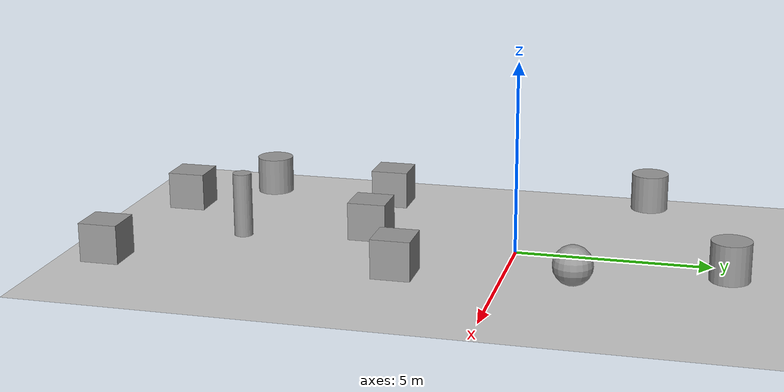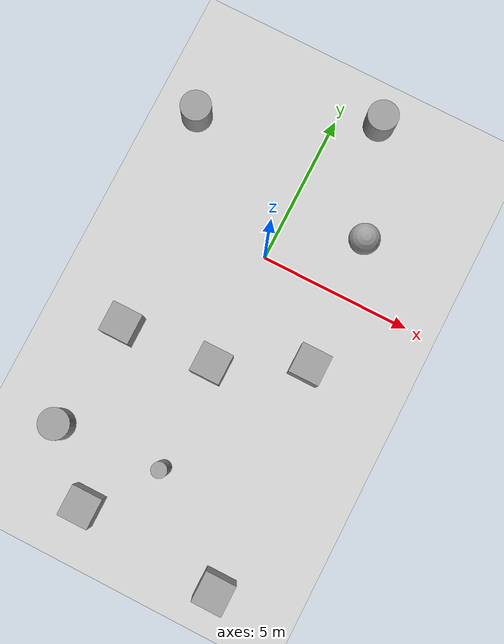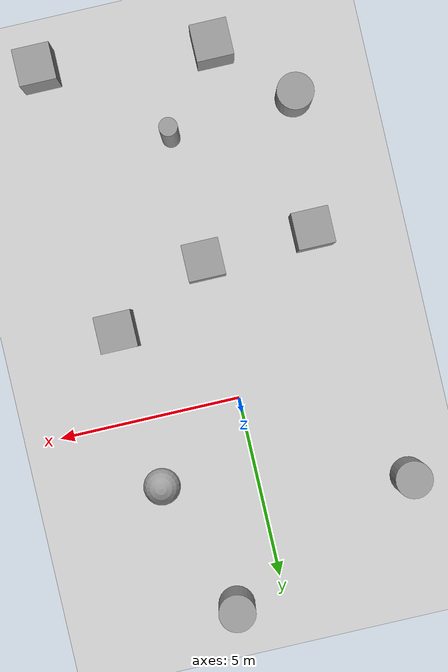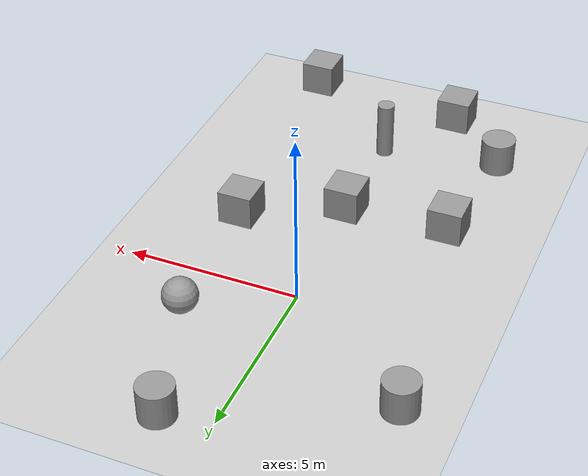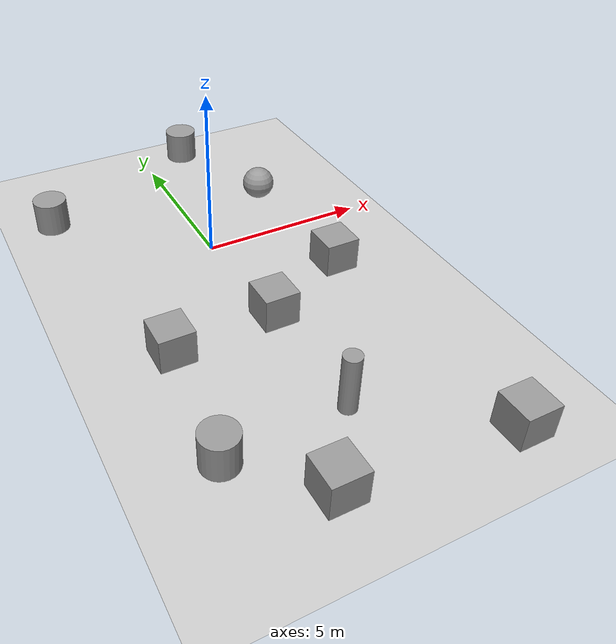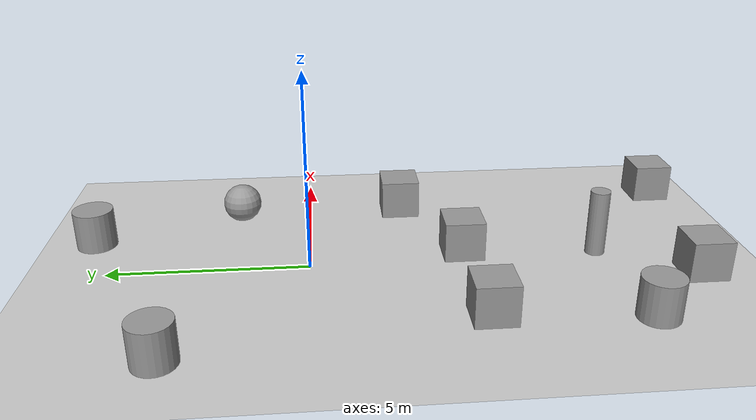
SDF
<sdf version="1.6">
 <world name="default">
  <light name="sun" type="directional">
   <pose>0 0 10 0 -0 0</pose>
   <diffuse>0.8 0.8 0.8 1</diffuse>
   <specular>0.2 0.2 0.2 1</specular>
   <attenuation>
    <range>1000</range>
    <constant>0.9</constant>
    <linear>0.01</linear>
    <quadratic>0.001</quadratic>
   </attenuation>
   <direction>0 0.5 -0.9</direction>
  </light>
  <light name="point_light" type="point">
   <pose>0 -0.377195 6.59868 0 -0 0</pose>
   <diffuse>0.784314 0.784314 0.784314 1</diffuse>
   <specular>0.0980392 0.0980392 0.0980392 1</specular>
   <attenuation>
    <range>50</range>
    <constant>0.8</constant>
    <linear>0</linear>
    <quadratic>0.001</quadratic>
   </attenuation>
   <cast_shadows>0</cast_shadows>
   <direction>0 0 -1</direction>
  </light>
  <model name="ground_plane">
   <static>1</static>
   <link name="link">
    <collision name="collision">
     <geometry><plane><normal>0 0 1</normal><size>100 100</size></plane></geometry>
     <surface><friction><ode><mu>100</mu><mu2>50</mu2></ode></friction></surface>
    </collision>
    <visual name="visual">
     <cast_shadows>0</cast_shadows>
     <geometry><plane><normal>0 0 1</normal><size>100 100</size></plane></geometry>
     <material>
      <script><uri>file://media/materials/scripts/gazebo.material</uri><name>Gazebo/Grey</name></script>
     </material>
    </visual>
   </link>
  </model>
  <gravity>0 0 -9.8</gravity>
  <magnetic_field>6e-06 2.3e-05 -4.2e-05</magnetic_field>
  <atmosphere type="adiabatic"/>
  <physics name="default_physics" default="0" type="ode">
   <max_step_size>0.001</max_step_size>
   <real_time_factor>1</real_time_factor>
   <real_time_update_rate>1000</real_time_update_rate>
  </physics>
  <scene><ambient>0.4 0.4 0.4 1</ambient><background>0.7 0.7 0.7 1</background><shadows>1</shadows></scene>
  <spherical_coordinates>
   <surface_model>EARTH_WGS84</surface_model>
   <latitude_deg>0</latitude_deg>
   <longitude_deg>0</longitude_deg>
   <elevation>0</elevation>
   <heading_deg>0</heading_deg>
  </spherical_coordinates>
  <model name="unit_sphere">
   <pose>2.53091 1.81166 0.6898 0 -0 0</pose>
   <link name="link">
    <inertial>
     <mass>1</mass>
     <inertia><ixx>0.1</ixx><ixy>0</ixy><ixz>0</ixz><iyy>0.1</iyy><iyz>0</iyz><izz>0.1</izz></inertia>
    </inertial>
    <collision name="collision"><geometry><sphere><radius>0.5</radius></sphere></geometry></collision>
    <visual name="visual">
     <geometry><sphere><radius>0.5</radius></sphere></geometry>
     <material>
      <script><name>Gazebo/Grey</name><uri>file://media/materials/scripts/gazebo.material</uri></script>
     </material>
    </visual>
   </link>
  </model>
  <model name="unit_box">
   <pose>2.77273 -2.49368 0.6898 -0 -0 -0</pose>
   <link name="link">
    <inertial>
     <mass>1</mass>
     <inertia>
      <ixx>0.166667</ixx>
      <ixy>0</ixy>
      <ixz>0</ixz>
      <iyy>0.166667</iyy>
      <iyz>0</iyz>
      <izz>0.166667</izz>
     </inertia>
    </inertial>
    <collision name="collision"><geometry><box><size>1 1 1</size></box></geometry></collision>
    <visual name="visual">
     <geometry><box><size>1 1 1</size></box></geometry>
     <material>
      <script><name>Gazebo/Grey</name><uri>file://media/materials/scripts/gazebo.material</uri></script>
     </material>
    </visual>
   </link>
  </model>
  <model name="unit_cylinder">
   <pose>-3.26627 -7.60597 0.68979 0 0 -5.6e-05</pose>
   <link name="link">
    <inertial>
     <mass>1</mass>
     <inertia><ixx>0.145833</ixx><ixy>0</ixy><ixz>0</ixz><iyy>0.145833</iyy><iyz>0</iyz><izz>0.125</izz></inertia>
    </inertial>
    <collision name="collision">
     <geometry><cylinder><radius>0.5</radius><length>1</length></cylinder></geometry>
    </collision>
    <visual name="visual">
     <geometry><cylinder><radius>0.5</radius><length>1</length></cylinder></geometry>
     <material>
      <script><name>Gazebo/Grey</name><uri>file://media/materials/scripts/gazebo.material</uri></script>
     </material>
    </visual>
   </link>
  </model>
  <audio><device>default</device></audio>
  <model name="unit_cylinder_0">
   <pose>-4.0198 3.06499 0.6898 0 0 -1.3e-05</pose>
   <link name="link">
    <inertial>
     <mass>1</mass>
     <inertia><ixx>0.145833</ixx><ixy>0</ixy><ixz>0</ixz><iyy>0.145833</iyy><iyz>0</iyz><izz>0.125</izz></inertia>
    </inertial>
    <collision name="collision">
     <geometry><cylinder><radius>0.5</radius><length>1</length></cylinder></geometry>
    </collision>
    <visual name="visual">
     <geometry><cylinder><radius>0.5</radius><length>1</length></cylinder></geometry>
     <material>
      <script><name>Gazebo/Grey</name><uri>file://media/materials/scripts/gazebo.material</uri></script>
     </material>
    </visual>
   </link>
  </model>
  <model name="unit_cylinder_1">
   <pose>1.30758 5.44611 0.6898 0 -0 1e-05</pose>
   <link name="link">
    <inertial>
     <mass>1</mass>
     <inertia><ixx>0.145833</ixx><ixy>0</ixy><ixz>0</ixz><iyy>0.145833</iyy><iyz>0</iyz><izz>0.125</izz></inertia>
    </inertial>
    <collision name="collision">
     <geometry><cylinder><radius>0.5</radius><length>1</length></cylinder></geometry>
    </collision>
    <visual name="visual">
     <geometry><cylinder><radius>0.5</radius><length>1</length></cylinder></geometry>
     <material>
      <script><name>Gazebo/Grey</name><uri>file://media/materials/scripts/gazebo.material</uri></script>
     </material>
    </visual>
   </link>
  </model>
  <model name="unit_box_1">
   <pose>-2.91798 -3.99395 0.6898 -0 -0 -0</pose>
   <link name="link">
    <inertial>
     <mass>1</mass>
     <inertia>
      <ixx>0.166667</ixx>
      <ixy>0</ixy>
      <ixz>0</ixz>
      <iyy>0.166667</iyy>
      <iyz>0</iyz>
      <izz>0.166667</izz>
     </inertia>
    </inertial>
    <collision name="collision"><geometry><box><size>1 1 1</size></box></geometry></collision>
    <visual name="visual">
     <geometry><box><size>1 1 1</size></box></geometry>
     <material>
      <script><name>Gazebo/Grey</name><uri>file://media/materials/scripts/gazebo.material</uri></script>
     </material>
    </visual>
   </link>
  </model>
  <model name="unit_box_2">
   <pose>-1.4149 -9.41627 0.6898 -0 -0 -0</pose>
   <link name="link">
    <inertial>
     <mass>1</mass>
     <inertia>
      <ixx>0.166667</ixx>
      <ixy>0</ixy>
      <ixz>0</ixz>
      <iyy>0.166667</iyy>
      <iyz>0</iyz>
      <izz>0.166667</izz>
     </inertia>
    </inertial>
    <collision name="collision"><geometry><box><size>1 1 1</size></box></geometry></collision>
    <visual name="visual">
     <geometry><box><size>1 1 1</size></box></geometry>
     <material>
      <script><name>Gazebo/Grey</name><uri>file://media/materials/scripts/gazebo.material</uri></script>
     </material>
    </visual>
   </link>
  </model>
  <model name="unit_box_3">
   <pose>3.27706 -9.83599 0.6898 -0 -0 -0</pose>
   <link name="link">
    <inertial>
     <mass>1</mass>
     <inertia>
      <ixx>0.166667</ixx>
      <ixy>0</ixy>
      <ixz>0</ixz>
      <iyy>0.166667</iyy>
      <iyz>0</iyz>
      <izz>0.166667</izz>
     </inertia>
    </inertial>
    <collision name="collision"><geometry><box><size>1 1 1</size></box></geometry></collision>
    <visual name="visual">
     <geometry><box><size>1 1 1</size></box></geometry>
     <material>
      <script><name>Gazebo/Grey</name><uri>file://media/materials/scripts/gazebo.material</uri></script>
     </material>
    </visual>
   </link>
  </model>
  <model name="unit_cylinder_2">
   <link name="link">
    <inertial>
     <mass>1</mass>
     <inertia><ixx>0.145833</ixx><ixy>0</ixy><ixz>0</ixz><iyy>0.145833</iyy><iyz>0</iyz><izz>0.125</izz></inertia>
    </inertial>
    <visual name="visual">
     <geometry><cylinder><radius>0.25</radius><length>2</length></cylinder></geometry>
     <material>
      <script><name>Gazebo/Grey</name><uri>file://media/materials/scripts/gazebo.material</uri></script>
      <shader type="normal_map_object_space"><normal_map>__default__</normal_map></shader>
      <ambient>0.3 0.3 0.3 1</ambient>
      <diffuse>0.7 0.7 0.7 1</diffuse>
      <specular>0.01 0.01 0.01 1</specular>
      <emissive>0 0 0 1</emissive>
     </material>
    </visual>
    <collision name="collision">
     <geometry><cylinder><radius>0.25</radius><length>1</length></cylinder></geometry>
     <surface>
      <friction>
       <ode><mu>1</mu><mu2>1</mu2><fdir1>0 0 0</fdir1><slip1>0</slip1><slip2>0</slip2></ode>
       <torsional>
        <coefficient>1</coefficient>
        <patch_radius>0</patch_radius>
        <surface_radius>0</surface_radius>
        <use_patch_radius>1</use_patch_radius>
        <ode><slip>0</slip></ode>
       </torsional>
      </friction>
      <bounce><restitution_coefficient>0</restitution_coefficient><threshold>1e+06</threshold></bounce>
      <contact>
       <collide_without_contact>0</collide_without_contact>
       <collide_without_contact_bitmask>1</collide_without_contact_bitmask>
       <collide_bitmask>1</collide_bitmask>
       <ode>
        <soft_cfm>0</soft_cfm>
        <soft_erp>0.2</soft_erp>
        <kp>1e+13</kp>
        <kd>1</kd>
        <max_vel>0.01</max_vel>
        <min_depth>0</min_depth>
       </ode>
       <bullet>
        <split_impulse>1</split_impulse>
        <split_impulse_penetration_threshold>-0.01</split_impulse_penetration_threshold>
        <soft_cfm>0</soft_cfm>
        <soft_erp>0.2</soft_erp>
        <kp>1e+13</kp>
        <kd>1</kd>
       </bullet>
      </contact>
     </surface>
    </collision>
   </link>
   <static>0</static>
   <pose>0.20634 -7.33694 0.689802 0 -3e-06 -8e-06</pose>
  </model>
  <model name="unit_box_0">
   <link name="link">
    <inertial>
     <mass>1</mass>
     <inertia>
      <ixx>0.166667</ixx>
      <ixy>0</ixy>
      <ixz>0</ixz>
      <iyy>0.166667</iyy>
      <iyz>0</iyz>
      <izz>0.166667</izz>
     </inertia>
    </inertial>
    <visual name="visual">
     <geometry><box><size>1 1 1</size></box></geometry>
     <material>
      <script><name>Gazebo/Grey</name><uri>file://media/materials/scripts/gazebo.material</uri></script>
      <shader type="normal_map_object_space"><normal_map>__default__</normal_map></shader>
     </material>
    </visual>
    <collision name="collision">
     <geometry><box><size>1 1 1</size></box></geometry>
     <surface>
      <friction>
       <ode><mu>1</mu><mu2>1</mu2><fdir1>0 0 0</fdir1><slip1>0</slip1><slip2>0</slip2></ode>
       <torsional>
        <coefficient>1</coefficient>
        <patch_radius>0</patch_radius>
        <surface_radius>0</surface_radius>
        <use_patch_radius>1</use_patch_radius>
        <ode><slip>0</slip></ode>
       </torsional>
      </friction>
      <bounce><restitution_coefficient>0</restitution_coefficient><threshold>1e+06</threshold></bounce>
      <contact>
       <collide_without_contact>0</collide_without_contact>
       <collide_without_contact_bitmask>1</collide_without_contact_bitmask>
       <collide_bitmask>1</collide_bitmask>
       <ode>
        <soft_cfm>0</soft_cfm>
        <soft_erp>0.2</soft_erp>
        <kp>1e+13</kp>
        <kd>1</kd>
        <max_vel>0.01</max_vel>
        <min_depth>0</min_depth>
       </ode>
       <bullet>
        <split_impulse>1</split_impulse>
        <split_impulse_penetration_threshold>-0.01</split_impulse_penetration_threshold>
        <soft_cfm>0</soft_cfm>
        <soft_erp>0.2</soft_erp>
        <kp>1e+13</kp>
        <kd>1</kd>
       </bullet>
      </contact>
     </surface>
    </collision>
   </link>
   <static>0</static>
   <pose>0.090867 -3.82733 0.6898 0 -0 0</pose>
  </model>
 </world>
</sdf>
